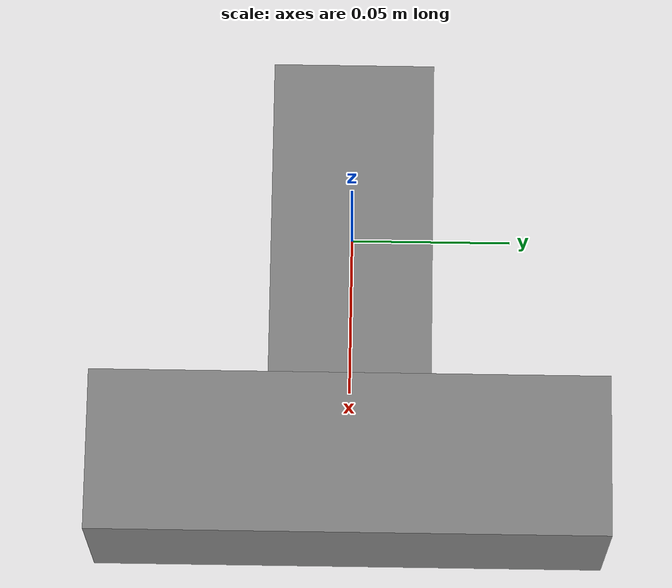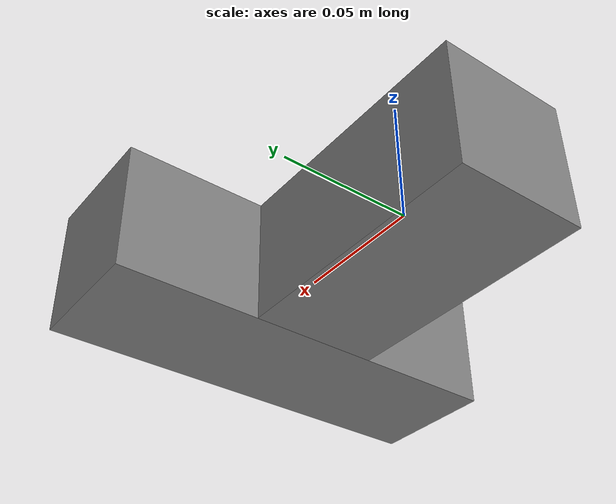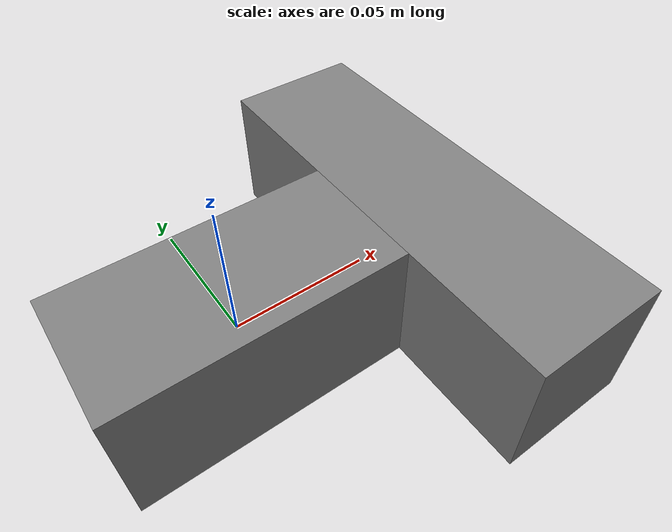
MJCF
<mujoco model="shape_t">
  <worldbody>
    <body name="shape">
      <geom name="bottom" type="box" size="0.05 0.025 0.025" pos="0.0 0.0 0.0"
        mass="0.087" />
      <geom name="top" type="box" size="0.025 0.08 0.025" pos="0.075 0.0 0.0"
        mass="0.123" />
      <site name="attractor_site1" pos="-0.03 0.0 0.0" size="0.015" />
      <site name="attractor_site2" pos="0.075 0.05 0.0" size="0.015" />
      <site name="attractor_site3" pos="0.075 -0.05 0.0" size="0.015" />
    </body>
  </worldbody>
</mujoco>
